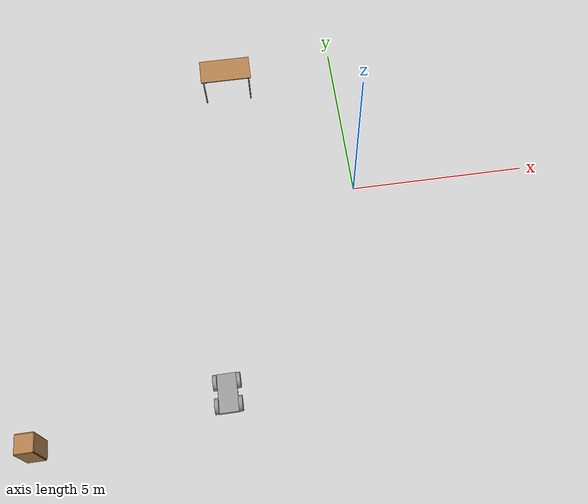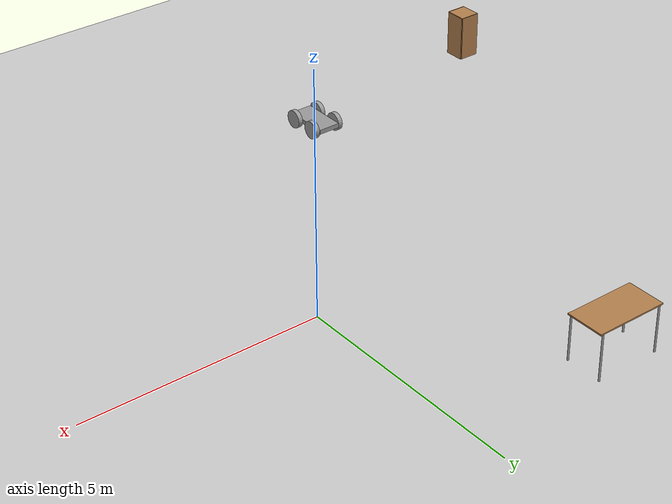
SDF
<sdf version="1.6">
 <world name="default">
  <model name="ground_plane">
   <static>1</static>
   <link name="link">
    <collision name="collision">
     <geometry><plane><normal>0 0 1</normal><size>100 100</size></plane></geometry>
     <surface><friction><ode><mu>100</mu><mu2>50</mu2></ode></friction></surface>
    </collision>
    <visual name="visual">
     <cast_shadows>0</cast_shadows>
     <geometry><plane><normal>0 0 1</normal><size>100 100</size></plane></geometry>
     <material>
      <script><uri>file://media/materials/scripts/gazebo.material</uri><name>Gazebo/Grey</name></script>
     </material>
    </visual>
   </link>
  </model>
  <model name="robot_model_0">
   <link name="link_0">
    <pose>-0 -2e-06 0 0 -0 0</pose>
    <inertial>
     <mass>1</mass>
     <inertia>
      <ixx>0.166667</ixx>
      <ixy>0</ixy>
      <ixz>0</ixz>
      <iyy>0.166667</iyy>
      <iyz>0</iyz>
      <izz>0.166667</izz>
     </inertia>
    </inertial>
    <visual name="visual">
     <geometry><box><size>0.5 1 0.1</size></box></geometry>
     <material>
      <lighting>1</lighting>
      <script><uri>file://media/materials/scripts/gazebo.material</uri><name>Gazebo/Grey</name></script>
      <ambient>0.3 0.3 0.3 1</ambient>
      <diffuse>0.7 0.7 0.7 1</diffuse>
      <specular>0.01 0.01 0.01 1</specular>
      <emissive>0 0 0 1</emissive>
      <shader type="vertex"><normal_map>__default__</normal_map></shader>
     </material>
    </visual>
    <collision name="collision">
     <geometry><box><size>0.5 1 0.1</size></box></geometry>
     <surface>
      <friction>
       <ode><mu>1</mu><mu2>1</mu2><fdir1>0 0 0</fdir1><slip1>0</slip1><slip2>0</slip2></ode>
       <torsional>
        <coefficient>1</coefficient>
        <patch_radius>0</patch_radius>
        <surface_radius>0</surface_radius>
        <use_patch_radius>1</use_patch_radius>
        <ode><slip>0</slip></ode>
       </torsional>
      </friction>
      <bounce><restitution_coefficient>0</restitution_coefficient><threshold>1e+06</threshold></bounce>
      <contact>
       <collide_without_contact>0</collide_without_contact>
       <collide_without_contact_bitmask>1</collide_without_contact_bitmask>
       <collide_bitmask>1</collide_bitmask>
       <ode>
        <soft_cfm>0</soft_cfm>
        <soft_erp>0.2</soft_erp>
        <kp>1e+13</kp>
        <kd>1</kd>
        <max_vel>0.01</max_vel>
        <min_depth>0</min_depth>
       </ode>
       <bullet>
        <split_impulse>1</split_impulse>
        <split_impulse_penetration_threshold>-0.01</split_impulse_penetration_threshold>
        <soft_cfm>0</soft_cfm>
        <soft_erp>0.2</soft_erp>
        <kp>1e+13</kp>
        <kd>1</kd>
       </bullet>
      </contact>
     </surface>
    </collision>
   </link>
   <link name="link_1">
    <pose>0.300039 -0.299989 0 1.5707 0 1.5707</pose>
    <inertial>
     <mass>1</mass>
     <inertia><ixx>0.145833</ixx><ixy>0</ixy><ixz>0</ixz><iyy>0.145833</iyy><iyz>0</iyz><izz>0.125</izz></inertia>
     <pose>0 0 0.2 0 -0 0</pose>
    </inertial>
    <visual name="visual">
     <geometry><cylinder><radius>0.2</radius><length>0.1</length></cylinder></geometry>
     <material>
      <lighting>1</lighting>
      <script><uri>file://media/materials/scripts/gazebo.material</uri><name>Gazebo/Grey</name></script>
      <ambient>0.3 0.3 0.3 1</ambient>
      <diffuse>0.7 0.7 0.7 1</diffuse>
      <specular>0.01 0.01 0.01 1</specular>
      <emissive>0 0 0 1</emissive>
      <shader type="vertex"><normal_map>__default__</normal_map></shader>
     </material>
    </visual>
    <collision name="collision">
     <geometry><cylinder><radius>0.2</radius><length>0.1</length></cylinder></geometry>
     <surface>
      <friction>
       <ode><mu>1</mu><mu2>1</mu2><fdir1>0 0 0</fdir1><slip1>0</slip1><slip2>0</slip2></ode>
       <torsional>
        <coefficient>1</coefficient>
        <patch_radius>0</patch_radius>
        <surface_radius>0</surface_radius>
        <use_patch_radius>1</use_patch_radius>
        <ode><slip>0</slip></ode>
       </torsional>
      </friction>
      <bounce><restitution_coefficient>0</restitution_coefficient><threshold>1e+06</threshold></bounce>
      <contact>
       <collide_without_contact>0</collide_without_contact>
       <collide_without_contact_bitmask>1</collide_without_contact_bitmask>
       <collide_bitmask>1</collide_bitmask>
       <ode>
        <soft_cfm>0</soft_cfm>
        <soft_erp>0.2</soft_erp>
        <kp>1e+13</kp>
        <kd>1</kd>
        <max_vel>0.01</max_vel>
        <min_depth>0</min_depth>
       </ode>
       <bullet>
        <split_impulse>1</split_impulse>
        <split_impulse_penetration_threshold>-0.01</split_impulse_penetration_threshold>
        <soft_cfm>0</soft_cfm>
        <soft_erp>0.2</soft_erp>
        <kp>1e+13</kp>
        <kd>1</kd>
       </bullet>
      </contact>
     </surface>
    </collision>
   </link>
   <link name="link_1_clone">
    <pose>0.300039 0.299993 0 1.5707 0 1.5707</pose>
    <inertial>
     <mass>1</mass>
     <inertia><ixx>0.145833</ixx><ixy>0</ixy><ixz>0</ixz><iyy>0.145833</iyy><iyz>0</iyz><izz>0.125</izz></inertia>
     <pose>0 0 0.2 0 -0 0</pose>
    </inertial>
    <visual name="visual">
     <geometry><cylinder><radius>0.2</radius><length>0.1</length></cylinder></geometry>
     <material>
      <lighting>1</lighting>
      <script><uri>file://media/materials/scripts/gazebo.material</uri><name>Gazebo/Grey</name></script>
      <ambient>0.3 0.3 0.3 1</ambient>
      <diffuse>0.7 0.7 0.7 1</diffuse>
      <specular>0.01 0.01 0.01 1</specular>
      <emissive>0 0 0 1</emissive>
      <shader type="vertex"><normal_map>__default__</normal_map></shader>
     </material>
    </visual>
    <collision name="collision">
     <geometry><cylinder><radius>0.2</radius><length>0.1</length></cylinder></geometry>
     <surface>
      <friction>
       <ode><mu>1</mu><mu2>1</mu2><fdir1>0 0 0</fdir1><slip1>0</slip1><slip2>0</slip2></ode>
       <torsional>
        <coefficient>1</coefficient>
        <patch_radius>0</patch_radius>
        <surface_radius>0</surface_radius>
        <use_patch_radius>1</use_patch_radius>
        <ode><slip>0</slip></ode>
       </torsional>
      </friction>
      <bounce><restitution_coefficient>0</restitution_coefficient><threshold>1e+06</threshold></bounce>
      <contact>
       <collide_without_contact>0</collide_without_contact>
       <collide_without_contact_bitmask>1</collide_without_contact_bitmask>
       <collide_bitmask>1</collide_bitmask>
       <ode>
        <soft_cfm>0</soft_cfm>
        <soft_erp>0.2</soft_erp>
        <kp>1e+13</kp>
        <kd>1</kd>
        <max_vel>0.01</max_vel>
        <min_depth>0</min_depth>
       </ode>
       <bullet>
        <split_impulse>1</split_impulse>
        <split_impulse_penetration_threshold>-0.01</split_impulse_penetration_threshold>
        <soft_cfm>0</soft_cfm>
        <soft_erp>0.2</soft_erp>
        <kp>1e+13</kp>
        <kd>1</kd>
       </bullet>
      </contact>
     </surface>
    </collision>
   </link>
   <link name="link_1_clone_0">
    <pose>-0.300039 0.299994 0 1.5707 0 1.5707</pose>
    <inertial>
     <mass>1</mass>
     <inertia><ixx>0.145833</ixx><ixy>0</ixy><ixz>0</ixz><iyy>0.145833</iyy><iyz>0</iyz><izz>0.125</izz></inertia>
     <pose>0 0 0.2 0 -0 0</pose>
    </inertial>
    <visual name="visual">
     <geometry><cylinder><radius>0.2</radius><length>0.1</length></cylinder></geometry>
     <material>
      <lighting>1</lighting>
      <script><uri>file://media/materials/scripts/gazebo.material</uri><name>Gazebo/Grey</name></script>
      <ambient>0.3 0.3 0.3 1</ambient>
      <diffuse>0.7 0.7 0.7 1</diffuse>
      <specular>0.01 0.01 0.01 1</specular>
      <emissive>0 0 0 1</emissive>
      <shader type="vertex"><normal_map>__default__</normal_map></shader>
     </material>
    </visual>
    <collision name="collision">
     <geometry><cylinder><radius>0.2</radius><length>0.1</length></cylinder></geometry>
     <surface>
      <friction>
       <ode><mu>1</mu><mu2>1</mu2><fdir1>0 0 0</fdir1><slip1>0</slip1><slip2>0</slip2></ode>
       <torsional>
        <coefficient>1</coefficient>
        <patch_radius>0</patch_radius>
        <surface_radius>0</surface_radius>
        <use_patch_radius>1</use_patch_radius>
        <ode><slip>0</slip></ode>
       </torsional>
      </friction>
      <bounce><restitution_coefficient>0</restitution_coefficient><threshold>1e+06</threshold></bounce>
      <contact>
       <collide_without_contact>0</collide_without_contact>
       <collide_without_contact_bitmask>1</collide_without_contact_bitmask>
       <collide_bitmask>1</collide_bitmask>
       <ode>
        <soft_cfm>0</soft_cfm>
        <soft_erp>0.2</soft_erp>
        <kp>1e+13</kp>
        <kd>1</kd>
        <max_vel>0.01</max_vel>
        <min_depth>0</min_depth>
       </ode>
       <bullet>
        <split_impulse>1</split_impulse>
        <split_impulse_penetration_threshold>-0.01</split_impulse_penetration_threshold>
        <soft_cfm>0</soft_cfm>
        <soft_erp>0.2</soft_erp>
        <kp>1e+13</kp>
        <kd>1</kd>
       </bullet>
      </contact>
     </surface>
    </collision>
   </link>
   <link name="link_1_clone_1">
    <pose>-0.300039 -0.299997 0 1.5707 0 1.5707</pose>
    <inertial>
     <mass>1</mass>
     <inertia><ixx>0.145833</ixx><ixy>0</ixy><ixz>0</ixz><iyy>0.145833</iyy><iyz>0</iyz><izz>0.125</izz></inertia>
     <pose>0 0 0.2 0 -0 0</pose>
    </inertial>
    <visual name="visual">
     <geometry><cylinder><radius>0.2</radius><length>0.1</length></cylinder></geometry>
     <material>
      <lighting>1</lighting>
      <script><uri>file://media/materials/scripts/gazebo.material</uri><name>Gazebo/Grey</name></script>
      <ambient>0.3 0.3 0.3 1</ambient>
      <diffuse>0.7 0.7 0.7 1</diffuse>
      <specular>0.01 0.01 0.01 1</specular>
      <emissive>0 0 0 1</emissive>
      <shader type="vertex"><normal_map>__default__</normal_map></shader>
     </material>
    </visual>
    <collision name="collision">
     <geometry><cylinder><radius>0.2</radius><length>0.1</length></cylinder></geometry>
     <surface>
      <friction>
       <ode><mu>1</mu><mu2>1</mu2><fdir1>0 0 0</fdir1><slip1>0</slip1><slip2>0</slip2></ode>
       <torsional>
        <coefficient>1</coefficient>
        <patch_radius>0</patch_radius>
        <surface_radius>0</surface_radius>
        <use_patch_radius>1</use_patch_radius>
        <ode><slip>0</slip></ode>
       </torsional>
      </friction>
      <bounce><restitution_coefficient>0</restitution_coefficient><threshold>1e+06</threshold></bounce>
      <contact>
       <collide_without_contact>0</collide_without_contact>
       <collide_without_contact_bitmask>1</collide_without_contact_bitmask>
       <collide_bitmask>1</collide_bitmask>
       <ode>
        <soft_cfm>0</soft_cfm>
        <soft_erp>0.2</soft_erp>
        <kp>1e+13</kp>
        <kd>1</kd>
        <max_vel>0.01</max_vel>
        <min_depth>0</min_depth>
       </ode>
       <bullet>
        <split_impulse>1</split_impulse>
        <split_impulse_penetration_threshold>-0.01</split_impulse_penetration_threshold>
        <soft_cfm>0</soft_cfm>
        <soft_erp>0.2</soft_erp>
        <kp>1e+13</kp>
        <kd>1</kd>
       </bullet>
      </contact>
     </surface>
    </collision>
   </link>
   <joint name="link_0_JOINT_0" type="revolute">
    <parent>link_0</parent>
    <child>link_1</child>
    <axis>
     <xyz>0 0 1</xyz>
     <use_parent_model_frame>0</use_parent_model_frame>
     <limit>
      <lower>-1.79769e+308</lower>
      <upper>1.79769e+308</upper>
      <effort>-1</effort>
      <velocity>-1</velocity>
     </limit>
     <dynamics>
      <spring_reference>0</spring_reference>
      <spring_stiffness>0</spring_stiffness>
      <damping>0</damping>
      <friction>0</friction>
     </dynamics>
    </axis>
    <physics>
     <ode><limit><cfm>0</cfm><erp>0.2</erp></limit><suspension><cfm>0</cfm><erp>0.2</erp></suspension></ode>
    </physics>
   </joint>
   <joint name="link_0_JOINT_1" type="revolute">
    <parent>link_0</parent>
    <child>link_1_clone</child>
    <axis>
     <xyz>0 0 1</xyz>
     <use_parent_model_frame>0</use_parent_model_frame>
     <limit>
      <lower>-1.79769e+308</lower>
      <upper>1.79769e+308</upper>
      <effort>-1</effort>
      <velocity>-1</velocity>
     </limit>
     <dynamics>
      <spring_reference>0</spring_reference>
      <spring_stiffness>0</spring_stiffness>
      <damping>0</damping>
     </dynamics>
    </axis>
    <physics>
     <ode><limit><cfm>0</cfm><erp>0.2</erp></limit><suspension><cfm>0</cfm><erp>0.2</erp></suspension></ode>
    </physics>
   </joint>
   <joint name="link_0_JOINT_2" type="revolute">
    <parent>link_0</parent>
    <child>link_1_clone_0</child>
    <axis>
     <xyz>0 0 1</xyz>
     <use_parent_model_frame>0</use_parent_model_frame>
     <limit>
      <lower>-1.79769e+308</lower>
      <upper>1.79769e+308</upper>
      <effort>-1</effort>
      <velocity>-1</velocity>
     </limit>
     <dynamics>
      <spring_reference>0</spring_reference>
      <spring_stiffness>0</spring_stiffness>
      <damping>0</damping>
     </dynamics>
    </axis>
    <physics>
     <ode><limit><cfm>0</cfm><erp>0.2</erp></limit><suspension><cfm>0</cfm><erp>0.2</erp></suspension></ode>
    </physics>
   </joint>
   <joint name="link_1_clone_1_JOINT_3" type="revolute">
    <parent>link_0</parent>
    <child>link_1_clone_1</child>
    <axis>
     <xyz>0 0 1</xyz>
     <use_parent_model_frame>0</use_parent_model_frame>
     <limit>
      <lower>-1.79769e+308</lower>
      <upper>1.79769e+308</upper>
      <effort>-1</effort>
      <velocity>-1</velocity>
     </limit>
     <dynamics>
      <spring_reference>0</spring_reference>
      <spring_stiffness>0</spring_stiffness>
      <damping>0</damping>
     </dynamics>
    </axis>
    <physics>
     <ode><limit><cfm>0</cfm><erp>0.2</erp></limit><suspension><cfm>0</cfm><erp>0.2</erp></suspension></ode>
    </physics>
   </joint>
   <static>0</static>
   <pose>-4.15561 -5.53864 0.200002 -1e-05 -0 -0.00017</pose>
  </model>
  <model name="cabinet">
   <static>1</static>
   <link name="cabinet_bottom_plate">
    <inertial>
     <pose>0 0 -1 0 -0 0</pose>
     <inertia><ixx>2.05</ixx><ixy>0</ixy><ixz>0</ixz><iyy>2.05</iyy><iyz>0</iyz><izz>2.05</izz></inertia>
     <mass>25</mass>
    </inertial>
    <collision name="cabinet_bottom_plate_geom">
     <pose>0 0 0.01 0 -0 0</pose>
     <geometry><box><size>0.45 0.45 0.02</size></box></geometry>
    </collision>
    <visual name="cabinet_bottom_plate_geom_visual">
     <pose>0 0 0.01 0 -0 0</pose>
     <geometry><box><size>0.45 0.45 0.02</size></box></geometry>
     <material>
      <script><uri>file://media/materials/scripts/gazebo.material</uri><name>Gazebo/Wood</name></script>
     </material>
    </visual>
    <collision name="cabinet_bottom_plate_geom_cabinet_back_plate">
     <pose>0.235 0 0.51 0 -0 0</pose>
     <geometry><box><size>0.02 0.45 1.02</size></box></geometry>
    </collision>
    <visual name="cabinet_bottom_plate_geom_cabinet_back_plate_visual">
     <pose>0.235 0 0.51 0 -0 0</pose>
     <geometry><box><size>0.02 0.45 1.02</size></box></geometry>
     <material>
      <script><uri>file://media/materials/scripts/gazebo.material</uri><name>Gazebo/Wood</name></script>
     </material>
    </visual>
    <collision name="cabinet_bottom_plate_geom_cabinet_left_plate">
     <pose>0 0.235 0.51 0 -0 0</pose>
     <geometry><box><size>0.45 0.02 1.02</size></box></geometry>
    </collision>
    <visual name="cabinet_bottom_plate_geom_cabinet_left_plate_visual">
     <pose>0 0.235 0.51 0 -0 0</pose>
     <geometry><box><size>0.45 0.02 1.02</size></box></geometry>
     <material>
      <script><uri>file://media/materials/scripts/gazebo.material</uri><name>Gazebo/Wood</name></script>
     </material>
    </visual>
    <collision name="cabinet_bottom_plate_geom_cabinet_middle_plate">
     <pose>0 0 0.51 0 -0 0</pose>
     <geometry><box><size>0.45 0.45 0.02</size></box></geometry>
    </collision>
    <visual name="cabinet_bottom_plate_geom_cabinet_middle_plate_visual">
     <pose>0 0 0.51 0 -0 0</pose>
     <geometry><box><size>0.45 0.45 0.02</size></box></geometry>
     <material>
      <script><uri>file://media/materials/scripts/gazebo.material</uri><name>Gazebo/Wood</name></script>
     </material>
    </visual>
    <collision name="cabinet_bottom_plate_geom_cabinet_right_plate">
     <pose>0 -0.235 0.51 0 -0 0</pose>
     <geometry><box><size>0.45 0.02 1.02</size></box></geometry>
    </collision>
    <visual name="cabinet_bottom_plate_geom_cabinet_right_plate_visual">
     <pose>0 -0.235 0.51 0 -0 0</pose>
     <geometry><box><size>0.45 0.02 1.02</size></box></geometry>
     <material>
      <script><uri>file://media/materials/scripts/gazebo.material</uri><name>Gazebo/Wood</name></script>
     </material>
    </visual>
    <collision name="cabinet_bottom_plate_geom_cabinet_top_plate">
     <pose>0 0 1.01 0 -0 0</pose>
     <geometry><box><size>0.45 0.45 0.02</size></box></geometry>
    </collision>
    <visual name="cabinet_bottom_plate_geom_cabinet_top_plate_visual">
     <pose>0 0 1.01 0 -0 0</pose>
     <geometry><box><size>0.45 0.45 0.02</size></box></geometry>
     <material>
      <script><uri>file://media/materials/scripts/gazebo.material</uri><name>Gazebo/Wood</name></script>
     </material>
    </visual>
   </link>
   <pose>-8.94622 -6.26723 0 0 -0 0</pose>
  </model>
  <model name="table">
   <static>1</static>
   <link name="link">
    <collision name="surface">
     <pose>0 0 1 0 -0 0</pose>
     <geometry><box><size>1.5 0.8 0.03</size></box></geometry>
     <surface><friction><ode><mu>0.6</mu><mu2>0.6</mu2></ode></friction></surface>
    </collision>
    <visual name="visual1">
     <pose>0 0 1 0 -0 0</pose>
     <geometry><box><size>1.5 0.8 0.03</size></box></geometry>
     <material>
      <script><uri>file://media/materials/scripts/gazebo.material</uri><name>Gazebo/Wood</name></script>
     </material>
    </visual>
    <collision name="front_left_leg">
     <pose>0.68 0.38 0.5 0 -0 0</pose>
     <geometry><cylinder><radius>0.02</radius><length>1</length></cylinder></geometry>
    </collision>
    <visual name="front_left_leg">
     <pose>0.68 0.38 0.5 0 -0 0</pose>
     <geometry><cylinder><radius>0.02</radius><length>1</length></cylinder></geometry>
     <material>
      <script><uri>file://media/materials/scripts/gazebo.material</uri><name>Gazebo/Grey</name></script>
     </material>
    </visual>
    <collision name="front_right_leg">
     <pose>0.68 -0.38 0.5 0 -0 0</pose>
     <geometry><cylinder><radius>0.02</radius><length>1</length></cylinder></geometry>
    </collision>
    <visual name="front_right_leg">
     <pose>0.68 -0.38 0.5 0 -0 0</pose>
     <geometry><cylinder><radius>0.02</radius><length>1</length></cylinder></geometry>
     <material>
      <script><uri>file://media/materials/scripts/gazebo.material</uri><name>Gazebo/Grey</name></script>
     </material>
    </visual>
    <collision name="back_right_leg">
     <pose>-0.68 -0.38 0.5 0 -0 0</pose>
     <geometry><cylinder><radius>0.02</radius><length>1</length></cylinder></geometry>
    </collision>
    <visual name="back_right_leg">
     <pose>-0.68 -0.38 0.5 0 -0 0</pose>
     <geometry><cylinder><radius>0.02</radius><length>1</length></cylinder></geometry>
     <material>
      <script><uri>file://media/materials/scripts/gazebo.material</uri><name>Gazebo/Grey</name></script>
     </material>
    </visual>
    <collision name="back_left_leg">
     <pose>-0.68 0.38 0.5 0 -0 0</pose>
     <geometry><cylinder><radius>0.02</radius><length>1</length></cylinder></geometry>
    </collision>
    <visual name="back_left_leg">
     <pose>-0.68 0.38 0.5 0 -0 0</pose>
     <geometry><cylinder><radius>0.02</radius><length>1</length></cylinder></geometry>
     <material>
      <script><uri>file://media/materials/scripts/gazebo.material</uri><name>Gazebo/Grey</name></script>
     </material>
    </visual>
   </link>
   <pose>-3.31934 4.10457 0 0 -0 0</pose>
  </model>
 </world>
</sdf>
